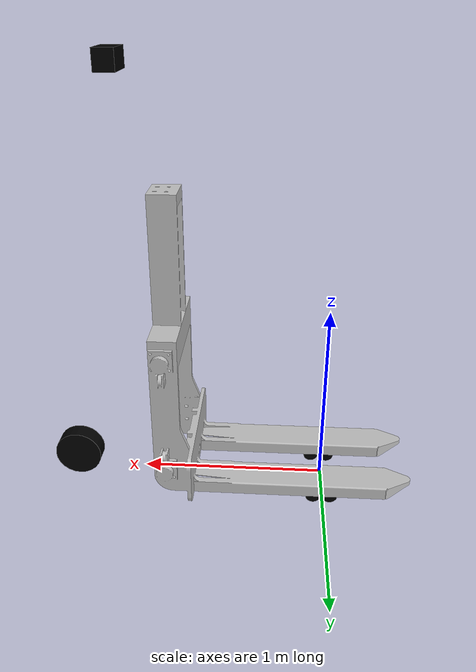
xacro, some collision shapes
<?xml version="1.0"?>
<robot xmlns:xacro="http://www.ros.org/wiki/xacro" name="itav_bot">

  <xacro:property name="traction_wheel_radious" value="0.130"/>
  <xacro:property name="traction_wheel_offset" value="0.0"/>
  <xacro:property name="wheel_base" value="1.384"/>
  <xacro:property name="rear_wheels_radious" value="0.041"/>

  <xacro:include filename="$(find itav_description)/urdf/gazebo.xacro" />
  <xacro:include filename="$(find itav_description)/urdf/materials.xacro" />
  <xacro:include filename="$(find itav_description)/urdf/robot_structure.xacro" />
  <xacro:robot a="${traction_wheel_offset}"  R="${traction_wheel_radious}" L="${wheel_base}" r="${rear_wheels_radious}" />
  <xacro:include filename="$(find itav_description)/urdf/plugins.xacro" />

  <xacro:include filename="$(find itav_description)/urdf/zed_camera.macro.xacro" />

  <xacro:depth_camera name="zed" />
  <joint name="camera_joint" type="fixed">
      <origin rpy="0 0 0" xyz="1.05 0 2.20"/>
      <parent link="chassis"/>
      <child link="zed_link"/>
  </joint>

  <link name="safety_lidar_front_link"></link>

  <joint name="front_scanner_joint" type="fixed">
    <origin rpy="3.1416 0.0 -0.8753 " xyz="1.40 -0.54 0" />
    <parent link="base_link" />
    <child link="safety_lidar_front_link" />
  </joint>

  <link name="safety_lidar_back_link"></link>
6781
  <joint name="back_scanner_joint" type="fixed">
    <origin rpy="3.1416 0.0 1.734 " xyz="0.6 0.42 0" />
    <parent link="base_link" />
    <child link="safety_lidar_back_link" />
  </joint>

</robot>

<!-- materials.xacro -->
<robot xmlns:xacro="http://www.ros.org/wiki/xacro">

<material name="red">
    <color rgba="1.0 0.0 0.0 1"/>
  </material>

  <material name="green_light">
      <color rgba="0.0 1.0 0.0 1"/>
  </material>

  <material name="green_dark">
    <color rgba="0.0 0.5 0.0 1"/>
  </material>

  <material name="blue">
      <color rgba="0.0 0.0 1.0 1"/>
  </material>

  <material name="yellow">
      <color rgba="1.0 1.0 0.0 1"/>
  </material>

  <material name="black">
      <color rgba="0.0 0.0 0.0 1"/>
  </material>

  <material name="white">
      <color rgba="1.0 1.0 1.0 1"/>
  </material>

  <material name="silver">
    <color rgba="0.7529411765 0.7529411765 0.7529411765 0.9"/>
</material>

  <material name="box_bot_blue">
      <color rgba="0.088656 0.428691 0.491021 1"/>
  </material>

</robot>

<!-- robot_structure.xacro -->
<robot xmlns:xacro="http://www.ros.org/wiki/xacro">

  <xacro:macro name="robot" params="a L R r">

    <link name="base_link">
    </link>

      <!-- Body -->
      <link name="chassis">
        <visual>
          <origin rpy="0 0 -1.57" xyz="1.384 0 0.55"/>
          <geometry>
            <mesh filename="package://itav_description/meshes/body.stl"/>
          </geometry>
          <material name="silver"/>
        </visual>

        <inertial>
          <mass value="1"/>
          <origin rpy="0 0 0" xyz="0 0 0"/>
          <inertia ixx="0.1" ixy="0" ixz="0" iyy="0.1" iyz="0" izz="0.1"/>
        </inertial>

        <collision>
          <geometry>
            <box size="0.01 0.01 0.01"/>
          </geometry>
        </collision>
      </link>

      <joint name="base_link_joint" type="fixed">
        <origin rpy="0 0 0" xyz="0 0 0" />
        <parent link="base_link" />
        <child link="chassis" />
      </joint>

      <!-- Fork -->
      <link name="fork_link">
        <visual>
          <origin rpy="1.57 0 -1.57" xyz="0 0 0"/>
          <geometry>
            <mesh filename="package://itav_description/meshes/fork.stl"/>
          </geometry>
          <material name="silver"/>
        </visual>
      </link>

      <joint name="chassis_fork_joint" type="fixed">
        <origin rpy="0 0 0" xyz="0.7 0 0.2" />
        <parent link="chassis" />
        <child link="fork_link" />
      </joint>

    <!-- Front Link -->
    <link name="front_link">
      <visual>
        <origin rpy="0 0 0" xyz="0 0 0"/>
        <geometry>
          <box size="0.01 0.01 0.01"/>
        </geometry>
        <material name="black"/>
      </visual>

      <inertial>
        <mass value="1"/>
        <origin rpy="0 0 0" xyz="0 0 0"/>
        <inertia ixx="0.1" ixy="0" ixz="0" iyy="0.1" iyz="0" izz="0.1"/>
      </inertial>

      <collision>
        <geometry>
          <box size="0.01 0.01 0.01"/>
        </geometry>
      </collision>
    </link>

    <joint name="front_joint" type="fixed">
      <origin rpy="0 0 0" xyz="${L} 0 0" />
      <parent link="chassis" />
      <child link="front_link" />
    </joint>

    <!-- Steering -->
    <link name="steering_link">
      <visual>
        <origin rpy="0 0 0" xyz="0 0 0"/>
        <geometry>
          <box size="0.01 0.01 0.01"/>
        </geometry>
        <material name="black"/>
      </visual>

      <inertial>
        <mass value="1"/>
        <origin rpy="0 0 0" xyz="0 0 0"/>
        <inertia ixx="0.1" ixy="0" ixz="0" iyy="0.1" iyz="0" izz="0.1"/>
      </inertial>

      <collision>
        <geometry>
          <box size="0.01 0.01 0.01"/>
        </geometry>
      </collision>
    </link>

    <joint name="steering_joint" type="revolute">
      <origin rpy="0 0 0" xyz="0 ${-a} 0"/>
      <child link="steering_link"/>
      <parent link="front_link"/>
      <axis rpy="0 0 0" xyz="0 0 1"/>
      <limit lower="-1.4" upper="1.4"  effort="10000" velocity="1000"/>
      <joint_properties damping="10000.0" friction="100.0"/>
    </joint>

      <!-- Traction -->
      <link name="traction_link">
        <visual>
          <origin rpy="0 1.5707 1.5707" xyz="0 0 0"/>
          <geometry>
            <cylinder length="0.095" radius="${R}"/>
          </geometry>
          <material name="black"/>
        </visual>

        <inertial>
          <origin rpy="0 1.5707 1.5707" xyz="0 0 0"/>
          <mass value="10"/>
          <origin rpy="0 0 0" xyz="0 0 0"/>
          <inertia ixx="0.04977083333333334" ixy="0" ixz="0" iyy="0.04977083333333334" iyz="0" izz="0.0845"/>
        </inertial>

        <collision>
          <origin rpy="0 1.5707 1.5707" xyz="0 0 0"/>
          <geometry>
            <cylinder length="0.095" radius="${R}"/>
          </geometry>
        </collision>
      </link>

      <joint name="traction_joint" type="continuous">
        <origin rpy="0 0 0" xyz="0 0 ${R - r}"/>
        <child link="traction_link"/>
        <parent link="steering_link"/>
        <axis rpy="0 0 0" xyz="0 1 0"/>
        <limit effort="1" velocity="1"/>
        <joint_properties damping="1000.0" friction="100000.0"/>
      </joint>

    <!-- Wheel Left -->
    <link name="left_wheel_link">
      <visual>
        <origin rpy="0 1.5707 1.5707" xyz="0 0 0"/>
        <geometry>
          <cylinder length="0.06" radius="${r}"/>
        </geometry>
        <material name="black"/>
      </visual>

      <inertial>
        <origin rpy="0 1.5707 1.5707" xyz="0 0 0"/>
        <mass value="10"/>
        <origin rpy="0 0 0" xyz="0 0 0"/>
        <inertia ixx="0.0072025000000000014" ixy="0" ixz="0" iyy="0.0072025000000000014" iyz="0" izz="0.008405000000000001"/>
      </inertial>

      <collision>
        <origin rpy="0 1.5707 1.5707" xyz="0 0 0"/>
        <geometry>
          <cylinder length="0.06" radius="${r}"/>
        </geometry>
      </collision>
    </link>

    <joint name="left_wheel_joint" type="continuous">
      <origin rpy="0 0 0" xyz="0.045 0.187 0"/>
      <child link="left_wheel_link"/>
      <parent link="chassis"/>
      <axis rpy="0 0 0" xyz="0 1 0"/>
      <limit effort="10000" velocity="1000"/>
      <joint_properties damping="10000.0" friction="100000.0"/>
    </joint>

    <!-- Wheel Right -->
    <link name="right_wheel_link">
        <visual>
          <origin rpy="0 1.5707 1.5707" xyz="0 0 0"/>
          <geometry>
            <cylinder length="0.06" radius="${r}"/>
          </geometry>
          <material name="black"/>
        </visual>

        <inertial>
          <origin rpy="0 1.5707 1.5707" xyz="0 0 0"/>
          <mass value="10"/>
          <origin rpy="0 0 0" xyz="0 0 0"/>
          <inertia ixx="0.0072025000000000014" ixy="0" ixz="0" iyy="0.0072025000000000014" iyz="0" izz="0.008405000000000001"/>
        </inertial>

        <collision>
          <origin rpy="0 1.5707 1.5707" xyz="0 0 0"/>
          <geometry>
            <cylinder length="0.06" radius="${r}"/>
          </geometry>
        </collision>
    </link>

    <joint name="right_wheel_joint" type="continuous">
      <origin rpy="0 0 0" xyz="0.045 -0.187 0"/>
      <child link="right_wheel_link"/>
      <parent link="chassis"/>
      <axis rpy="0 0 0" xyz="0 1 0"/>
      <limit effort="10000" velocity="1000"/>
      <joint_properties damping="10000.0" friction="100000.0"/>
    </joint>

   <!-- Wheel Left Back -->
   <link name="left_wheel_back_link">
    <visual>
      <origin rpy="0 1.5707 1.5707" xyz="0 0 0"/>
      <geometry>
        <cylinder length="0.06" radius="${r}"/>
      </geometry>
      <material name="black"/>
    </visual>

      <inertial>
        <origin rpy="0 1.5707 1.5707" xyz="0 0 0"/>
        <mass value="10"/>
        <origin rpy="0 0 0" xyz="0 0 0"/>
        <inertia ixx="0.0072025000000000014" ixy="0" ixz="0" iyy="0.0072025000000000014" iyz="0" izz="0.008405000000000001"/>
      </inertial>

    <collision>
      <origin rpy="0 1.5707 1.5707" xyz="0 0 0"/>
      <geometry>
        <cylinder length="0.06" radius="${r}"/>
      </geometry>
    </collision>
  </link>

  <joint name="left_wheel_back_joint" type="continuous">
    <origin rpy="0 0 0" xyz="-0.045 0.187 0"/>
    <child link="left_wheel_back_link"/>
    <parent link="chassis"/>
    <axis rpy="0 0 0" xyz="0 1 0"/>
    <limit effort="10000" velocity="1000"/>
    <joint_properties damping="10000.0" friction="100000.0"/>
  </joint>

  <!-- Wheel Right Back -->
  <link name="right_wheel_back_link">
      <visual>
        <origin rpy="0 1.5707 1.5707" xyz="0 0 0"/>
        <geometry>
          <cylinder length="0.06" radius="${r}"/>
        </geometry>
        <material name="black"/>
      </visual>

      <inertial>
        <origin rpy="0 1.5707 1.5707" xyz="0 0 0"/>
        <mass value="10"/>
        <origin rpy="0 0 0" xyz="0 0 0"/>
        <inertia ixx="0.0072025000000000014" ixy="0" ixz="0" iyy="0.0072025000000000014" iyz="0" izz="0.008405000000000001"/>
      </inertial>

      <collision>
        <origin rpy="0 1.5707 1.5707" xyz="0 0 0"/>
        <geometry>
          <cylinder length="0.06" radius="${r}"/>
        </geometry>
      </collision>
  </link>

  <joint name="right_wheel_back_joint" type="continuous">
    <origin rpy="0 0 0" xyz="-0.045 -0.187 0"/>
    <child link="right_wheel_back_link"/>
    <parent link="chassis"/>
    <axis rpy="0 0 0" xyz="0 1 0"/>
    <limit effort="10000" velocity="1000"/>
    <joint_properties damping="10000.0" friction="100000.0"/>
  </joint>

</xacro:macro>

</robot>

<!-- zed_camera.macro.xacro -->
<robot xmlns:xacro="http://ros.org/wiki/xacro">

  <xacro:macro name="depth_camera" params="name">

    <link name="${name}_link">
      <visual name="${name}">
        <origin xyz="0 0 0" rpy="0 0 0"/>
        <geometry>
            <mesh filename="package://itav_description/meshes/zed/zed2i.stl"/>
        </geometry>
        <material name="black"/>
      </visual>

      <collision name="${name}">
        <origin xyz="0 0 0" rpy="0 0 0"/>
        <geometry>
          <box size="0.1 0.2 0.1" />
        </geometry>
      </collision>

      <inertial>
        <mass value="1e-5" />
        <origin xyz="0 0 0" rpy="0 0 0"/>
        <inertia ixx="1.0" ixy="1e-6" ixz="1e-6" iyy="1.0" iyz="1e-6" izz="1.0" />
      </inertial>
    </link>

    <link name="${name}_link_optical_frame">
    </link>

    <joint name="${name}_link_optical_joint" type="fixed">
      <origin rpy="1.5707963267948966 0 1.5707963267948966" xyz="0 0 0" />
      <parent link="${name}_link" />
      <child link="${name}_link_optical_frame" />
    </joint>

    <gazebo reference="${name}_link">
      <sensor type="multicamera" name="stereo">
        <pose>0 0 0 0 0 0</pose>
        <update_rate>15</update_rate>
        <always_on>true</always_on>

        <camera name="left">
          <pose>0 0 0 0 0 0</pose>
          <horizontal_fov>1.4</horizontal_fov>
          <image>
            <width>1280</width>
            <height>720</height>
            <format>B8G8R8</format>
          </image>
          <clip>
            <near>0.02</near>
            <far>40</far>
          </clip>
        </camera>

        <camera name="right">
          <pose>0 -0.12 0 0 0 0</pose>
          <horizontal_fov>1.4</horizontal_fov>
          <image>
            <width>1280</width>
            <height>720</height>
            <format>B8G8R8</format>
          </image>
          <clip>
            <near>0.02</near>
            <far>40</far>
          </clip>
        </camera>

        <plugin name="stereo_camera_controller" filename="libgazebo_ros_camera.so">
          <!-- Omit camera_name, will default to sensor name -->
          <frame_name>${name}_link_optical_frame</frame_name>
          <hack_baseline>0.12</hack_baseline>
        </plugin>
      </sensor>
    </gazebo>

  </xacro:macro>
</robot>
